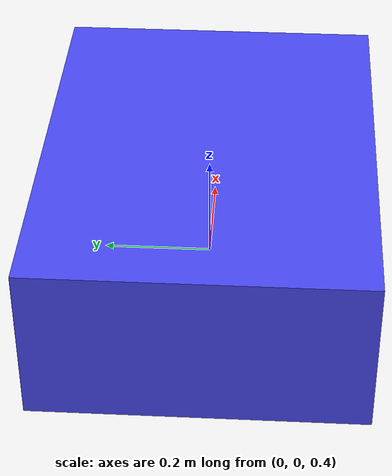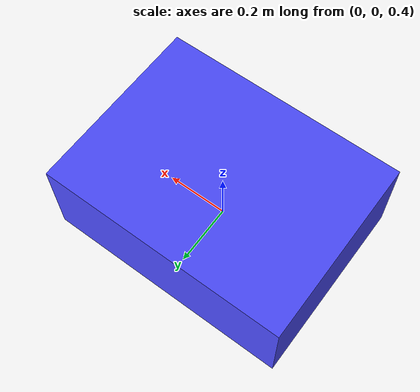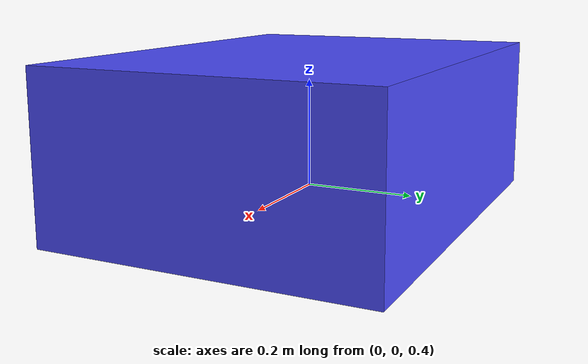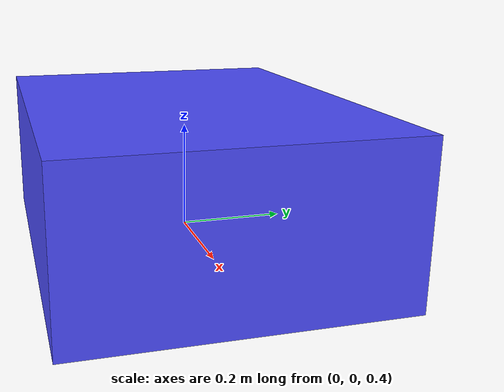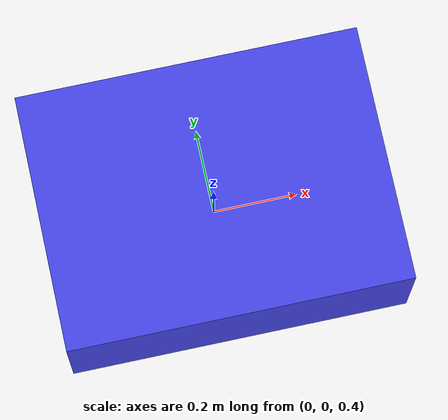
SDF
<?xml version="1.0" ?>
<sdf version="1.6">
  <model name="sensor_robot">
    <pose>0 0 0.5 0 0 0</pose>

    <!-- Robot base -->
    <link name="chassis">
      <inertial>
        <mass>5.0</mass>
        <inertia>
          <ixx>0.4167</ixx>
          <ixy>0</ixy>
          <ixz>0</ixz>
          <iyy>0.4167</iyy>
          <iyz>0</iyz>
          <izz>0.8333</izz>
        </inertia>
      </inertial>

      <visual name="chassis_visual">
        <geometry>
          <box><size>0.8 0.6 0.3</size></box>
        </geometry>
        <material>
          <ambient>0.2 0.2 0.8 1</ambient>
          <diffuse>0.3 0.3 1 1</diffuse>
          <specular>0.5 0.5 0.5 1</specular>
        </material>
      </visual>

      <collision name="chassis_collision">
        <geometry>
          <box><size>0.8 0.6 0.3</size></box>
        </geometry>
      </collision>
    </link>

    <!-- Camera sensor -->
    <sensor name="camera" type="camera">
      <pose>0.3 0 0.1 0 0 0</pose>
      <camera name="front_camera">
        <horizontal_fov>1.047</horizontal_fov> <!-- 60 degrees -->
        <image>
          <width>640</width>
          <height>480</height>
          <format>R8G8B8</format>
        </image>
        <clip>
          <near>0.1</near>
          <far>10.0</far>
        </clip>
        <noise>
          <type>gaussian</type>
          <mean>0.0</mean>
          <stddev>0.007</stddev>
        </noise>
      </camera>
      <plugin name="camera_controller" filename="libgazebo_ros_camera.so">
        <frame_name>camera_frame</frame_name>
        <topic_name>camera/image_raw</topic_name>
        <camera_info_topic_name>camera/camera_info</camera_info_topic_name>
      </plugin>
    </sensor>

    <!-- LiDAR sensor -->
    <sensor name="laser" type="ray">
      <pose>0.3 0 0.2 0 0 0</pose>
      <ray>
        <scan>
          <horizontal>
            <samples>360</samples>
            <resolution>1</resolution>
            <min_angle>-3.14159</min_angle>
            <max_angle>3.14159</max_angle>
          </horizontal>
        </scan>
        <range>
          <min>0.1</min>
          <max>10.0</max>
          <resolution>0.01</resolution>
        </range>
      </ray>
      <plugin name="laser_controller" filename="libgazebo_ros_laser.so">
        <frame_name>laser_frame</frame_name>
        <topic_name>scan</topic_name>
      </plugin>
    </sensor>

    <!-- IMU sensor -->
    <sensor name="imu_sensor" type="imu">
      <pose>0 0 0 0 0 0</pose>
      <imu>
        <angular_velocity>
          <x>
            <noise type="gaussian">
              <mean>0.0</mean>
              <stddev>0.0017</stddev> <!-- ~0.1 deg/s -->
            </noise>
          </x>
          <y>
            <noise type="gaussian">
              <mean>0.0</mean>
              <stddev>0.0017</stddev>
            </noise>
          </y>
          <z>
            <noise type="gaussian">
              <mean>0.0</mean>
              <stddev>0.0017</stddev>
            </noise>
          </z>
        </angular_velocity>
        <linear_acceleration>
          <x>
            <noise type="gaussian">
              <mean>0.0</mean>
              <stddev>1.7e-2</stddev> <!-- 17 mg -->
            </noise>
          </x>
          <y>
            <noise type="gaussian">
              <mean>0.0</mean>
              <stddev>1.7e-2</stddev>
            </noise>
          </y>
          <z>
            <noise type="gaussian">
              <mean>0.0</mean>
              <stddev>1.7e-2</stddev>
            </noise>
          </z>
        </linear_acceleration>
      </imu>
      <plugin name="imu_controller" filename="libgazebo_ros_imu.so">
        <frame_name>imu_frame</frame_name>
        <topic_name>imu</topic_name>
      </plugin>
    </sensor>

    <!-- Differential drive plugin for movement -->
    <plugin name="diff_drive" filename="libgazebo_ros_diff_drive.so">
      <command_topic>cmd_vel</command_topic>
      <odometry_topic>odom</odometry_topic>
      <odometry_frame>odom</odometry_frame>
      <robot_base_frame>chassis</robot_base_frame>
      <publish_odom>true</publish_odom>
      <publish_odom_tf>true</publish_odom_tf>
      <publish_wheel_tf>false</publish_wheel_tf>
      <wheel_separation>0.4</wheel_separation>
      <wheel_diameter>0.15</wheel_diameter>
      <max_wheel_torque>20.0</max_wheel_torque>
      <max_wheel_acceleration>1.0</max_wheel_acceleration>
    </plugin>

  </model>
</sdf>
